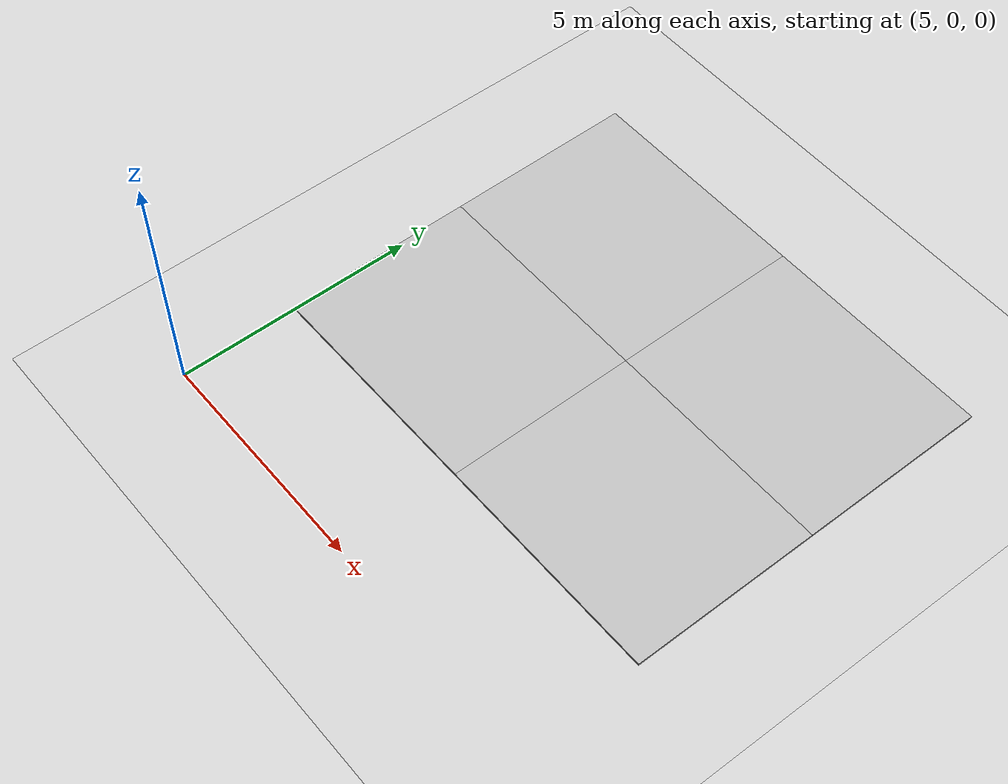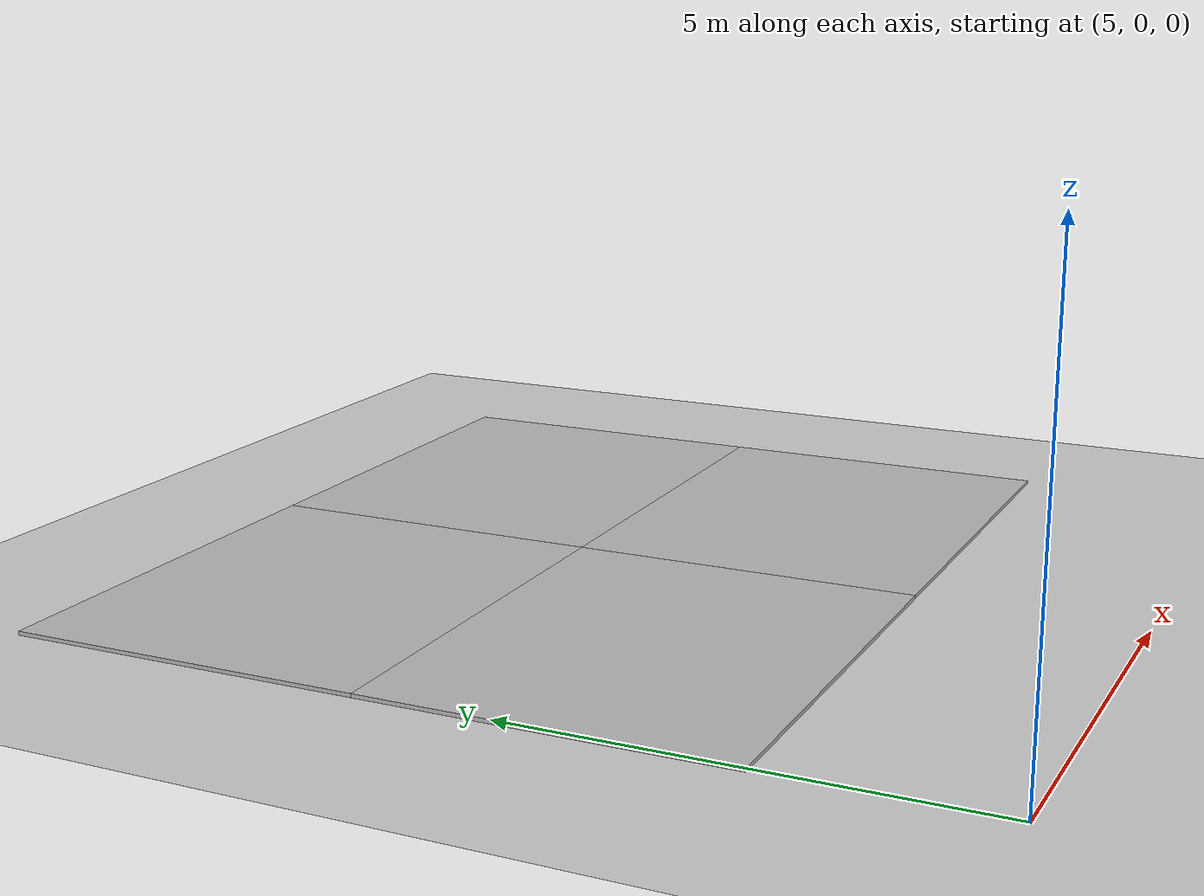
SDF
<sdf version="1.6">
 <world name="default">
  <model name="ground_plane">
   <static>1</static>
   <link name="link">
    <collision name="collision">
     <geometry><plane><normal>0 0 1</normal><size>100 100</size></plane></geometry>
     <surface><friction><ode><mu>100</mu><mu2>50</mu2></ode></friction></surface>
    </collision>
    <visual name="visual">
     <cast_shadows>0</cast_shadows>
     <geometry><plane><normal>0 0 1</normal><size>100 100</size></plane></geometry>
     <material>
      <script><uri>file://media/materials/scripts/gazebo.material</uri><name>Gazebo/Grey</name></script>
     </material>
    </visual>
   </link>
  </model>
  <model name="mud_box_clone">
   <static>1</static>
   <link name="link">
    <collision name="collision"><geometry><box><size>8 10 0.2</size></box></geometry></collision>
    <visual name="visual_1">
     <pose>-2 2.5 0 0 -0 0</pose>
     <cast_shadows>0</cast_shadows>
     <geometry><box><size>4 5 0.2</size></box></geometry>
     <material>
      <script>
       <uri>model://mud_box/materials/scripts</uri>
       <uri>model://mud_box/materials/textures</uri>
       <name>vrc/mud</name>
      </script>
     </material>
    </visual>
    <visual name="visual_2">
     <pose>2 2.5 0 0 -0 0</pose>
     <cast_shadows>0</cast_shadows>
     <geometry><box><size>4 5 0.2</size></box></geometry>
     <material>
      <script>
       <uri>model://mud_box/materials/scripts</uri>
       <uri>model://mud_box/materials/textures</uri>
       <name>vrc/mud</name>
      </script>
     </material>
    </visual>
    <visual name="visual_3">
     <pose>2 -2.5 0 0 -0 0</pose>
     <cast_shadows>0</cast_shadows>
     <geometry><box><size>4 5 0.2</size></box></geometry>
     <material>
      <script>
       <uri>model://mud_box/materials/scripts</uri>
       <uri>model://mud_box/materials/textures</uri>
       <name>vrc/mud</name>
      </script>
     </material>
    </visual>
    <visual name="visual_4">
     <pose>-2 -2.5 0 0 -0 0</pose>
     <cast_shadows>0</cast_shadows>
     <geometry><box><size>4 5 0.2</size></box></geometry>
     <material>
      <script>
       <uri>model://mud_box/materials/scripts</uri>
       <uri>model://mud_box/materials/textures</uri>
       <name>vrc/mud</name>
      </script>
     </material>
    </visual>
   </link>
   <pose>9.93783 6.49826 -0.069682 0 -0 1.57697</pose>
  </model>
 </world>
</sdf>
